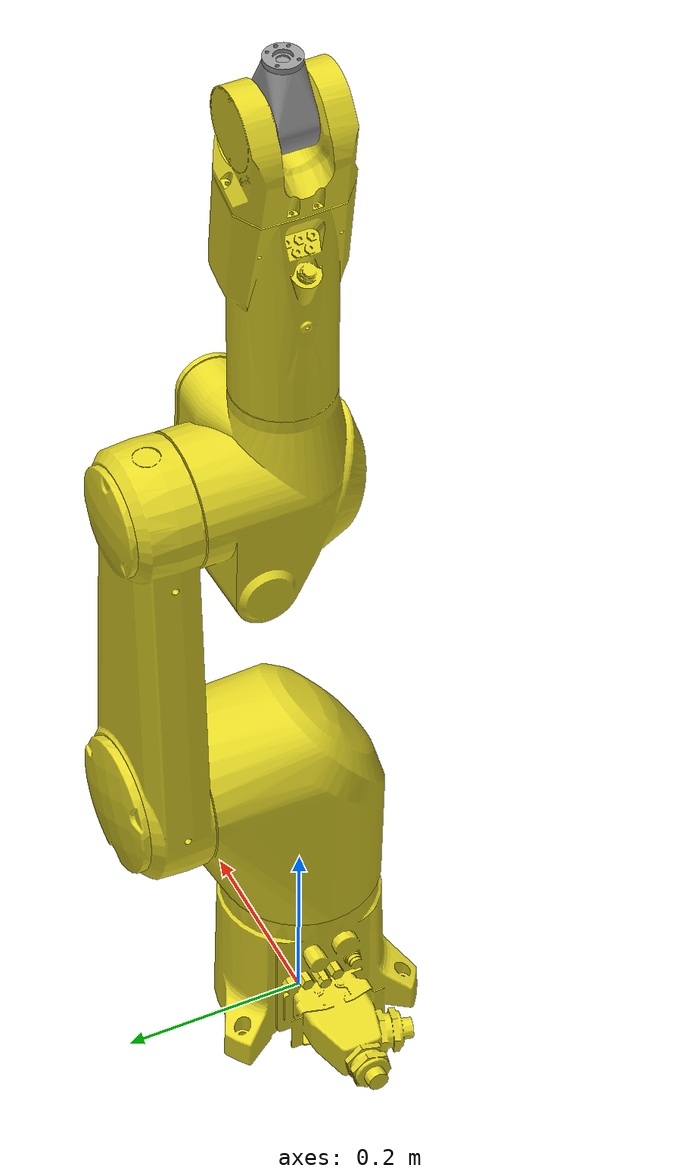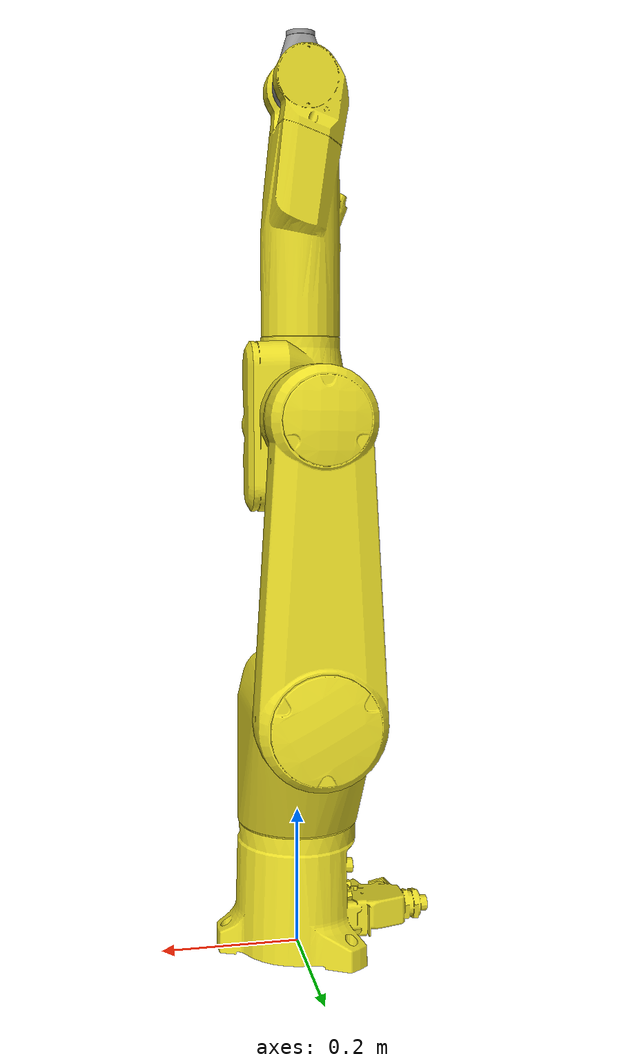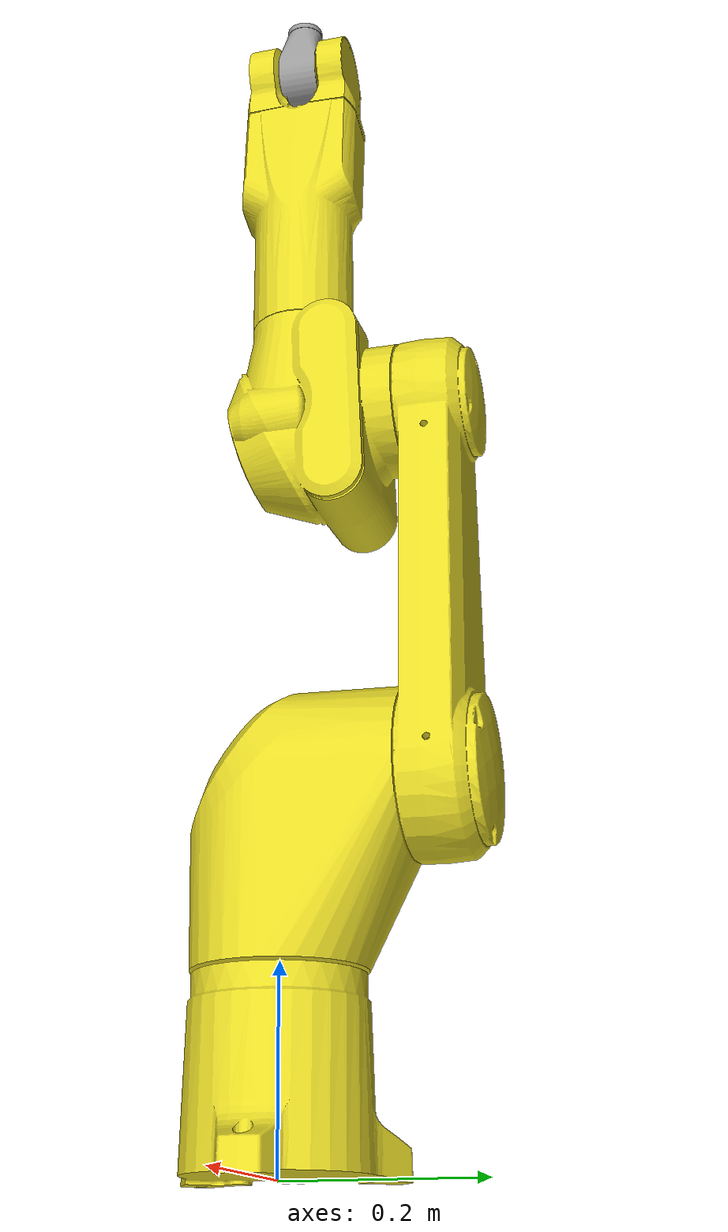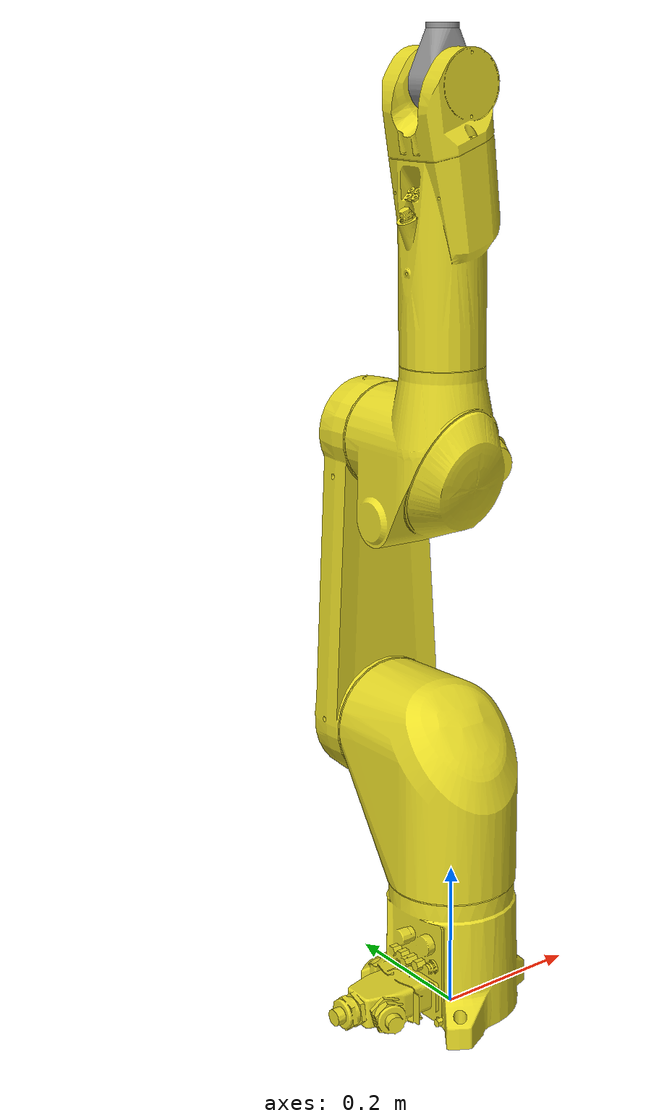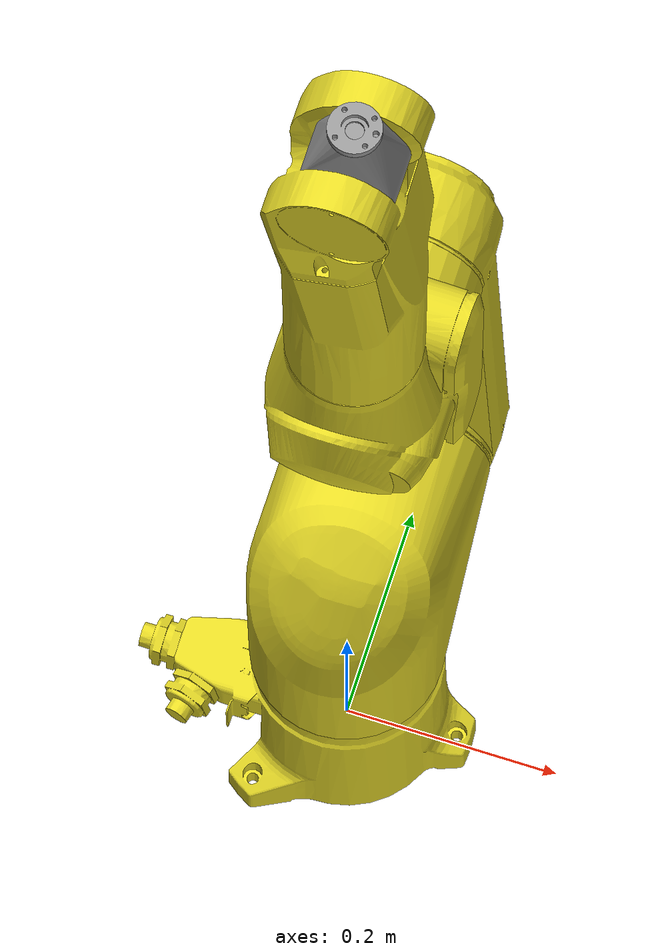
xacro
<?xml version="1.0" ?>
<robot name="staubli_tx60l_gazebo" xmlns:xacro="http://wiki.ros.org/xacro">
  <!-- TX60L -->
  <xacro:include filename="$(find staubli_tx60_gazebo)/urdf/tx60l_macro.xacro"/>

  <xacro:staubli_tx60l_robot prefix=""/>

  <!-- Fix robot to Gazebo world -->
  <link name="world"/>
  <joint name="world-base_link-fixed" type="fixed">
    <parent link="world"/>
    <child link="base_link"/>
    <origin xyz="0.0 0.0 0.0" rpy="0.0 0.0 0.0" />
  </joint>
</robot>

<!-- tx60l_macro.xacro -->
<robot xmlns:xacro="http://wiki.ros.org/xacro">
<xacro:include filename="$(find staubli_tx60_support)/urdf/tx60l_macro.xacro"/>
<xacro:macro name="staubli_tx60l_robot" params="prefix">

  <!-- get URDF description of Staubli TX60L model -->
  <xacro:staubli_tx60l prefix="${prefix}" />

  <!-- transmission list -->
  <transmission name="${prefix}tran1">
    <robotNamespace>/${prefix}</robotNamespace>
    <type>transmission_interface/SimpleTransmission</type>
    <joint name="${prefix}joint_1">
      <hardwareInterface>hardware_interface/PositionJointInterface</hardwareInterface>
    </joint>
    <actuator name="${prefix}motor1">
      <mechanicalReduction>1</mechanicalReduction>
    </actuator>
  </transmission>
  <transmission name="${prefix}tran2">
    <robotNamespace>/${prefix}</robotNamespace>
    <type>transmission_interface/SimpleTransmission</type>
    <joint name="${prefix}joint_2">
      <hardwareInterface>hardware_interface/PositionJointInterface</hardwareInterface>
    </joint>
    <actuator name="${prefix}motor2">
      <mechanicalReduction>1</mechanicalReduction>
    </actuator>
  </transmission>
  <transmission name="${prefix}tran3">
    <robotNamespace>/${prefix}</robotNamespace>
    <type>transmission_interface/SimpleTransmission</type>
    <joint name="${prefix}joint_3">
      <hardwareInterface>hardware_interface/PositionJointInterface</hardwareInterface>
    </joint>
    <actuator name="${prefix}motor3">
      <mechanicalReduction>1</mechanicalReduction>
    </actuator>
  </transmission>
  <transmission name="${prefix}tran4">
    <robotNamespace>/${prefix}</robotNamespace>
    <type>transmission_interface/SimpleTransmission</type>
    <joint name="${prefix}joint_4">
      <hardwareInterface>hardware_interface/PositionJointInterface</hardwareInterface>
    </joint>
    <actuator name="${prefix}motor4">
      <mechanicalReduction>1</mechanicalReduction>
    </actuator>
  </transmission>
  <transmission name="${prefix}tran5">
    <robotNamespace>/${prefix}</robotNamespace>
    <type>transmission_interface/SimpleTransmission</type>
    <joint name="${prefix}joint_5">
      <hardwareInterface>hardware_interface/PositionJointInterface</hardwareInterface>
    </joint>
    <actuator name="${prefix}motor5">
      <mechanicalReduction>1</mechanicalReduction>
    </actuator>
  </transmission>
  <transmission name="${prefix}tran6">
    <robotNamespace>/${prefix}</robotNamespace>
    <type>transmission_interface/SimpleTransmission</type>
    <joint name="${prefix}joint_6">
      <hardwareInterface>hardware_interface/PositionJointInterface</hardwareInterface>
    </joint>
    <actuator name="${prefix}motor6">
      <mechanicalReduction>1</mechanicalReduction>
    </actuator>
  </transmission>
  <!-- end of transmission list -->

  <!-- Gazebo-specific link properties -->
  <gazebo reference="${prefix}base_link">
    <material>Gazebo/Yellow</material>
    <turnGravityOff>true</turnGravityOff>
  </gazebo>
  <gazebo reference="${prefix}link_1">
    <material>Gazebo/Yellow</material>
    <turnGravityOff>true</turnGravityOff>
  </gazebo>
  <gazebo reference="${prefix}link_2">
    <material>Gazebo/Yellow</material>
    <turnGravityOff>true</turnGravityOff>
  </gazebo>
  <gazebo reference="${prefix}link_3">
    <material>Gazebo/Yellow</material>
    <turnGravityOff>true</turnGravityOff>
  </gazebo>
  <gazebo reference="${prefix}link_4">
    <material>Gazebo/Yellow</material>
    <turnGravityOff>true</turnGravityOff>
  </gazebo>
  <gazebo reference="${prefix}link_5">
    <material>Gazebo/Grey</material>
    <turnGravityOff>true</turnGravityOff>
  </gazebo>
  <gazebo reference="${prefix}link_6">
    <material>Gazebo/Grey</material>
    <turnGravityOff>true</turnGravityOff>
  </gazebo>

  <!-- ros_control plugin -->
  <gazebo>
    <plugin name="gazebo_ros_control" filename="libgazebo_ros_control.so">
      <robotNamespace>/${prefix}</robotNamespace>
      <robotSimType>gazebo_ros_control/DefaultRobotHWSim</robotSimType>
    </plugin>
  </gazebo>
  </xacro:macro>
</robot>

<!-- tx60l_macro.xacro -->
<robot xmlns:xacro="http://wiki.ros.org/xacro">
  <xacro:include filename="$(find staubli_resources)/urdf/common_materials.xacro"/>

  <xacro:macro name="staubli_tx60l" params="prefix">
    <!-- links: main serial chain -->
    <link name="${prefix}base_link">
      <visual>
        <origin xyz="0 0 0" rpy="0 0 0"/>
        <geometry>
          <mesh filename="package://staubli_tx60_support/meshes/tx60/visual/base_link.stl"/>
        </geometry>
        <xacro:material_staubli_ral_melon_yellow />
      </visual>
      <collision>
        <origin xyz="0 0 0" rpy="0 0 0"/>
        <geometry>
          <mesh filename="package://staubli_tx60_support/meshes/tx60/collision/base_link.stl"/>
        </geometry>
      </collision>
      <inertial>
          <mass value="4.65971957"/>
          <origin xyz="-0.00257355 -0.00039402 0.08786146" rpy="0.0 0.0 0.0"/>
          <inertia ixx="0.02319781" ixy="0.00023234" ixz="0.00162421"
                                    iyy="0.02621322" iyz="0.00008092"
                                                     izz="0.02286303"/>
      </inertial>
    </link>
    <link name="${prefix}link_1">
      <visual>
        <origin xyz="0 0 0" rpy="0 0 0"/>
        <geometry>
          <mesh filename="package://staubli_tx60_support/meshes/tx60/visual/link_1.stl"/>
        </geometry>
        <xacro:material_staubli_ral_melon_yellow />
      </visual>
      <collision>
        <origin xyz="0 0 0" rpy="0 0 0"/>
        <geometry>
          <mesh filename="package://staubli_tx60_support/meshes/tx60/collision/link_1.stl"/>
        </geometry>
      </collision>
      <inertial>
          <mass value="6.99103376"/>
          <origin xyz="0.00000000 0.02467680 -0.05265925" rpy="0.0 0.0 0.0"/>
          <inertia ixx="0.05672953" ixy="0.00000037" ixz="-0.00000049"
                                    iyy="0.04909238" iyz="0.01016069"
                                                     izz="0.03457565"/>
      </inertial>
    </link>
    <link name="${prefix}link_2">
      <visual>
        <origin xyz="0 0 0" rpy="0 0 0"/>
        <geometry>
          <mesh filename="package://staubli_tx60_support/meshes/tx60l/visual/link_2.stl"/>
        </geometry>
        <xacro:material_staubli_ral_melon_yellow />
      </visual>
      <collision>
        <origin xyz="0 0 0" rpy="0 0 0"/>
        <geometry>
          <mesh filename="package://staubli_tx60_support/meshes/tx60l/collision/link_2.stl"/>
        </geometry>
      </collision>
      <inertial>
          <mass value="5.21353000"/>
          <origin xyz="-0.00000322 0.17137541 0.17514843" rpy="0.0 0.0 0.0"/>
          <inertia ixx="0.13669961" ixy="0.00000038" ixz="-0.00000068"
                                    iyy="0.14393633" iyz="-0.00049262"
                                                     izz="0.01130291"/>
      </inertial>
    </link>
    <link name="${prefix}link_3">
      <visual>
        <origin xyz="0 0 0" rpy="0 0 0"/>
        <geometry>
          <mesh filename="package://staubli_tx60_support/meshes/tx60/visual/link_3.stl"/>
        </geometry>
        <xacro:material_staubli_ral_melon_yellow />
      </visual>
      <collision>
        <origin xyz="0 0 0" rpy="0 0 0"/>
        <geometry>
          <mesh filename="package://staubli_tx60_support/meshes/tx60/collision/link_3.stl"/>
        </geometry>
      </collision>
      <inertial>
          <mass value="4.52768000"/>
          <origin xyz="0.00424668 0.02553862 -0.00735408" rpy="0.0 0.0 0.0"/>
          <inertia ixx="0.02469218" ixy="0.00032528" ixz="0.00063194"
                                    iyy="0.02222651" iyz="-0.00155762"
                                                     izz="0.01657366"/>
      </inertial>
    </link>
    <link name="${prefix}link_4">
      <visual>
        <origin xyz="0 0 0" rpy="0 0 0"/>
        <geometry>
          <mesh filename="package://staubli_tx60_support/meshes/tx60l/visual/link_4.stl"/>
        </geometry>
        <xacro:material_staubli_ral_melon_yellow />
      </visual>
      <collision>
        <origin xyz="0 0 0" rpy="0 0 0"/>
        <geometry>
          <mesh filename="package://staubli_tx60_support/meshes/tx60l/collision/link_4.stl"/>
        </geometry>
      </collision>
      <inertial>
          <mass value="3.48055000"/>
          <origin xyz="-0.00134244 -0.00000186 0.28816464" rpy="0.0 0.0 0.0"/>
          <inertia ixx="0.03950054" ixy="0.00000004" ixz="-0.00063419"
                                    iyy="0.03813828" iyz="-0.00000002"
                                                     izz="0.00610289"/>
      </inertial>
    </link>
    <link name="${prefix}link_5">
      <visual>
        <origin xyz="0 0 0" rpy="0 0 0"/>
        <geometry>
          <mesh filename="package://staubli_tx60_support/meshes/tx60/visual/link_5.stl"/>
        </geometry>
        <xacro:material_staubli_ral_grey_aluminium />
      </visual>
      <collision>
        <origin xyz="0 0 0" rpy="0 0 0"/>
        <geometry>
          <mesh filename="package://staubli_tx60_support/meshes/tx60/collision/link_5.stl"/>
        </geometry>
      </collision>
      <inertial>
          <mass value="0.16254714"/>
          <origin xyz="-0.00000105 0.00000000 0.01268974" rpy="0.0 0.0 0.0"/>
          <inertia ixx="0.00012557" ixy="0.00000000" ixz="0.00000000"
                                    iyy="0.00013289" iyz="0.00000000"
                                                     izz="0.00006342"/>
      </inertial>
    </link>
    <link name="${prefix}link_6">
      <visual>
        <origin xyz="0 0 0" rpy="0 0 0"/>
        <geometry>
          <mesh filename="package://staubli_tx60_support/meshes/tx60/visual/link_6.stl"/>
        </geometry>
        <xacro:material_staubli_ral_grey_aluminium />
      </visual>
      <collision>
        <origin xyz="0 0 0" rpy="0 0 0"/>
        <geometry>
          <mesh filename="package://staubli_tx60_support/meshes/tx60/collision/link_6.stl"/>
        </geometry>
      </collision>
      <inertial>
          <mass value="0.00820000"/>
          <origin xyz="-0.00022629 0.00000000 -0.00597808" rpy="0.0 0.0 0.0"/>
          <inertia ixx="0.00000096" ixy="0.00000000" ixz="0.00000000"
                                    iyy="0.00000093" iyz="0.00000000"
                                                     izz="0.00000154"/>
      </inertial>
    </link>

    <!-- joints: main serial chain -->
    <joint name="${prefix}joint_1" type="revolute">
      <origin xyz="0 0 0.375" rpy="0 0 0"/>
      <parent link="${prefix}base_link"/>
      <child link="${prefix}link_1"/>
      <axis xyz="0 0 1"/>
      <!-- from Staubli instruction manual:
      (1) effort limit = 126 Nm if floor mounted
      (2) effort limit = 40 Nm if wall mounted -->
      <limit lower="${radians(-180)}" upper="${radians(180)}" effort="126.0" velocity="${radians(435)}" />
      <dynamics damping="0.0" friction="0.0"/>
    </joint>
    <joint name="${prefix}joint_2" type="revolute">
      <origin xyz="0 0 0" rpy="0 0 0"/>
      <parent link="${prefix}link_1"/>
      <child link="${prefix}link_2"/>
      <axis xyz="0 1 0"/>
      <limit lower="${radians(-127.5)}" upper="${radians(127.5)}" effort="47.0" velocity="${radians(385)}" />
      <dynamics damping="0.0" friction="0.0"/>
    </joint>
    <joint name="${prefix}joint_3" type="revolute">
      <origin xyz="0 0.02 0.40" rpy="0 0 0"/>
      <parent link="${prefix}link_2"/>
      <child link="${prefix}link_3"/>
      <axis xyz="0 1 0"/>
      <limit lower="${radians(-152.5)}" upper="${radians(152.5)}" effort="32.0" velocity="${radians(500)}" />
      <dynamics damping="0.0" friction="0.0"/>
    </joint>
    <joint name="${prefix}joint_4" type="revolute">
      <origin xyz="0 0 0" rpy="0 0 0"/>
      <parent link="${prefix}link_3"/>
      <child link="${prefix}link_4"/>
      <axis xyz="0 0 1"/>
      <limit lower="${radians(-270.0)}" upper="${radians(270.0)}" effort="7.0" velocity="${radians(995)}" />
      <dynamics damping="0.0" friction="0.0"/>
    </joint>
    <joint name="${prefix}joint_5" type="revolute">
      <origin xyz="0 0 0.45" rpy="0 0 0"/>
      <parent link="${prefix}link_4"/>
      <child link="${prefix}link_5"/>
      <axis xyz="0 1 0"/>
      <limit lower="${radians(-122.5)}" upper="${radians(132.5)}" effort="8.0" velocity="${radians(1065)}" />
      <dynamics damping="0.0" friction="0.0"/>
    </joint>
    <joint name="${prefix}joint_6" type="revolute">
      <origin xyz="0 0 0.07" rpy="0 0 0"/>
      <parent link="${prefix}link_5"/>
      <child link="${prefix}link_6"/>
      <axis xyz="0 0 1"/>
      <limit lower="${radians(-270.0)}" upper="${radians(270.0)}" effort="2.0" velocity="${radians(1445)}" />
      <dynamics damping="0.0" friction="0.0"/>
    </joint>

    <!-- ROS-Industrial 'base' frame: base_link to Staubli World Coordinates transform -->
    <link name="${prefix}base" />
    <joint name="${prefix}base_link-base" type="fixed">
      <origin xyz="0 0 0.375" rpy="0 0 0"/>
      <parent link="${prefix}base_link"/>
      <child link="${prefix}base"/>
    </joint>

    <!-- ROS-Industrial 'flange' frame: attachment point for EEF models -->
    <link name="${prefix}flange" />
    <joint name="${prefix}joint_6-flange" type="fixed">
      <origin xyz="0 0 0" rpy="0 ${radians(-90.0)} 0" />
      <parent link="${prefix}link_6" />
      <child link="${prefix}flange" />
    </joint>

    <!-- ROS-Industrial 'tool0' frame: all-zeros tool frame -->
    <link name="${prefix}tool0" />
    <joint name="${prefix}flange-tool0" type="fixed">
      <origin xyz="0 0 0" rpy="0 ${radians(90.0)} 0" />
      <parent link="${prefix}flange" />
      <child link="${prefix}tool0" />
    </joint>
  </xacro:macro>
</robot>
